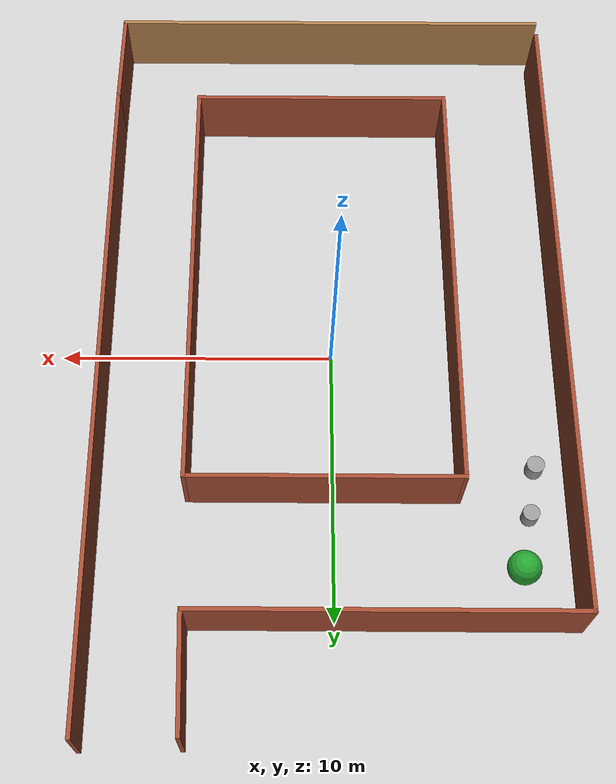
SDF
<?xml version="1.0"?>
<sdf version="1.4">
  <world name="default">
    <model name='ground_plane'>
      <static>1</static>
      <link name='link'>
        <collision name='collision'>
          <geometry>
            <plane>
              <normal>0 0 1</normal>
              <size>100 100</size>
            </plane>
          </geometry>
          <surface>
            <friction>
              <ode>
                <mu>100</mu>
                <mu2>50</mu2>
              </ode>
              <torsional>
                <ode/>
              </torsional>
            </friction>
            <contact>
              <ode/>
            </contact>
            <bounce/>
          </surface>
          <max_contacts>10</max_contacts>
        </collision>
        <visual name='visual'>
          <cast_shadows>0</cast_shadows>
          <geometry>
            <plane>
              <normal>0 0 1</normal>
              <size>100 100</size>
            </plane>
          </geometry>
          <material>
            <script>
              <uri>file://media/materials/scripts/gazebo.material</uri>
              <name>Gazebo/Tertiary</name>
            </script>
          </material>
        </visual>
        <self_collide>0</self_collide>
        <enable_wind>0</enable_wind>
        <kinematic>0</kinematic>
      </link>
    </model>
    <light name='sun' type='directional'>
      <cast_shadows>1</cast_shadows>
      <pose frame=''>0 0 10 0 -0 0</pose>
      <diffuse>0.8 0.8 0.8 1</diffuse>
      <specular>0.2 0.2 0.2 1</specular>
      <attenuation>
        <range>1000</range>
        <constant>0.9</constant>
        <linear>0.01</linear>
        <quadratic>0.001</quadratic>
      </attenuation>
      <direction>-0.5 0.1 -0.9</direction>
    </light>

    <!-- Other models -->

    <include>
      <uri>model://corridor_world</uri>
      <pose>0.0 0.10 0 0 0 0</pose>
    </include>

    <include>
      <uri>model://dynamic_obstacle</uri>
      <pose>-7.2 4.4 0.219 0 0 0</pose>
    </include>

    <include>
      <uri>model://dynamic_obstacle_1</uri>
      <pose>-6.91 6.19 0.219 0 0 0</pose>
    </include>

    <include>
      <uri>model://goal_location</uri>
      <pose>-6.5 8.2 0.7 0 0 0</pose>
    </include>

    <!-- User Camera -->
    <gui fullscreen='0'>
      <camera name='user_camera'>
        <pose frame=''>0.92 -7.97 22.96 0 0.675643 1.58</pose>
        <view_controller>orbit</view_controller>
        <projection_type>perspective</projection_type>
      </camera>
    </gui>
  </world>
</sdf>

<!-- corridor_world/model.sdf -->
<sdf version='1.6'>
  <model name='corridor'>
    <pose frame=''>-8.53208 -3.23332 0 0 -0 0</pose>
    <link name='Wall_12'>
      <collision name='Wall_12_Collision'>
        <geometry>
          <box>
            <size>13.5 0.15 2.5</size>
          </box>
        </geometry>
        <pose frame=''>0 0 1.25 0 -0 0</pose>
      </collision>
      <visual name='Wall_12_Visual'>
        <pose frame=''>0 0 1.25 0 -0 0</pose>
        <geometry>
          <box>
            <size>13.5 0.15 2.5</size>
          </box>
        </geometry>
        <material>
          <script>
            <uri>file://media/materials/scripts/gazebo.material</uri>
            <name>Gazebo/Bricks</name>
          </script>
          <ambient>1 1 1 1</ambient>
        </material>
        <meta>
          <layer>0</layer>
        </meta>
      </visual>
      <pose frame=''>-1.66567 10.0761 0 0 -0 0</pose>
    </link>
    <link name='Wall_13'>
      <collision name='Wall_13_Collision'>
        <geometry>
          <box>
            <size>4.14539 0.15 2.5</size>
          </box>
        </geometry>
        <pose frame=''>0 0 1.25 0 -0 0</pose>
      </collision>
      <visual name='Wall_13_Visual'>
        <pose frame=''>0 0 1.25 0 -0 0</pose>
        <geometry>
          <box>
            <size>4.14539 0.15 2.5</size>
          </box>
        </geometry>
        <material>
          <script>
            <uri>file://media/materials/scripts/gazebo.material</uri>
            <name>Gazebo/Bricks</name>
          </script>
          <ambient>1 1 1 1</ambient>
        </material>
        <meta>
          <layer>0</layer>
        </meta>
      </visual>
      <pose frame=''>5.00933 12.073 0 0 -0 1.59758</pose>
    </link>
    <link name='Wall_15'>
      <collision name='Wall_15_Collision'>
        <geometry>
          <box>
            <size>23.75 0.15 2.5</size>
          </box>
        </geometry>
        <pose frame=''>0 0 1.25 0 -0 0</pose>
      </collision>
      <visual name='Wall_15_Visual'>
        <pose frame=''>0 0 1.25 0 -0 0</pose>
        <geometry>
          <box>
            <size>23.75 0.15 2.5</size>
          </box>
        </geometry>
        <material>
          <script>
            <uri>file://media/materials/scripts/gazebo.material</uri>
            <name>Gazebo/Bricks</name>
          </script>
          <ambient>1 1 1 1</ambient>
        </material>
        <meta>
          <layer>0</layer>
        </meta>
      </visual>
      <pose frame=''>-8.34066 -1.72394 0 0 -0 -1.5708</pose>
    </link>
    <link name='Wall_17'>
      <collision name='Wall_17_Collision'>
        <geometry>
          <box>
            <size>16.75 0.15 2.5</size>
          </box>
        </geometry>
        <pose frame=''>0 0 1.25 0 -0 0</pose>
      </collision>
      <visual name='Wall_17_Visual'>
        <pose frame=''>0 0 1.25 0 -0 0</pose>
        <geometry>
          <box>
            <size>16.75 0.15 2.5</size>
          </box>
        </geometry>
        <material>
          <script>
            <uri>file://media/materials/scripts/gazebo.material</uri>
            <name>Gazebo/Wood</name>
          </script>
          <ambient>1 1 1 1</ambient>
        </material>
        <meta>
          <layer>0</layer>
        </meta>
      </visual>
      <pose frame=''>-0.021587 -14.1299 0 0 -0 0</pose>
    </link>
    <link name='Wall_18'>
      <collision name='Wall_18_Collision'>
        <geometry>
          <box>
            <size>3.81146 0.15 2.5</size>
          </box>
        </geometry>
        <pose frame=''>0 0 1.25 0 -0 0</pose>
      </collision>
      <visual name='Wall_18_Visual'>
        <pose frame=''>0 0 1.25 0 -0 0</pose>
        <geometry>
          <box>
            <size>3.81146 0.15 2.5</size>
          </box>
        </geometry>
        <material>
          <script>
            <uri>file://media/materials/scripts/gazebo.material</uri>
            <name>Gazebo/Bricks</name>
          </script>
          <ambient>1 1 1 1</ambient>
        </material>
        <meta>
          <layer>0</layer>
        </meta>
      </visual>
      <pose frame=''>8.30892 -12.2994 0 0 -0 1.55413</pose>
    </link>
    <link name='Wall_3'>
      <collision name='Wall_3_Collision'>
        <geometry>
          <box>
            <size>16 0.15 2.5</size>
          </box>
        </geometry>
        <pose frame=''>0 0 1.25 0 -0 0</pose>
      </collision>
      <visual name='Wall_3_Visual'>
        <pose frame=''>0 0 1.25 0 -0 0</pose>
        <geometry>
          <box>
            <size>16 0.15 2.5</size>
          </box>
        </geometry>
        <material>
          <script>
            <uri>file://media/materials/scripts/gazebo.material</uri>
            <name>Gazebo/Bricks</name>
          </script>
          <ambient>1 1 1 1</ambient>
        </material>
        <meta>
          <layer>0</layer>
        </meta>
      </visual>
      <pose frame=''>-4.44767 -2.4369 0 0 -0 1.5708</pose>
    </link>
    <link name='Wall_4'>
      <collision name='Wall_4_Collision'>
        <geometry>
          <box>
            <size>9.75 0.15 2.5</size>
          </box>
        </geometry>
        <pose frame=''>0 0 1.25 0 -0 0</pose>
      </collision>
      <visual name='Wall_4_Visual'>
        <pose frame=''>0 0 1.25 0 -0 0</pose>
        <geometry>
          <box>
            <size>9.75 0.15 2.5</size>
          </box>
        </geometry>
        <material>
          <script>
            <uri>file://media/materials/scripts/gazebo.material</uri>
            <name>Gazebo/Bricks</name>
          </script>
          <ambient>1 1 1 1</ambient>
        </material>
        <meta>
          <layer>0</layer>
        </meta>
      </visual>
      <pose frame=''>0.352329 5.4881 0 0 -0 0</pose>
    </link>
    <link name='Wall_5'>
      <collision name='Wall_5_Collision'>
        <geometry>
          <box>
            <size>16 0.15 2.5</size>
          </box>
        </geometry>
        <pose frame=''>0 0 1.25 0 -0 0</pose>
      </collision>
      <visual name='Wall_5_Visual'>
        <pose frame=''>0 0 1.25 0 -0 0</pose>
        <geometry>
          <box>
            <size>16 0.15 2.5</size>
          </box>
        </geometry>
        <material>
          <script>
            <uri>file://media/materials/scripts/gazebo.material</uri>
            <name>Gazebo/Bricks</name>
          </script>
          <ambient>1 1 1 1</ambient>
        </material>
        <meta>
          <layer>0</layer>
        </meta>
      </visual>
      <pose frame=''>5.15233 -2.4369 0 0 -0 -1.5708</pose>
    </link>
    <link name='Wall_6'>
      <collision name='Wall_6_Collision'>
        <geometry>
          <box>
            <size>9.75 0.15 2.5</size>
          </box>
        </geometry>
        <pose frame=''>0 0 1.25 0 -0 0</pose>
      </collision>
      <visual name='Wall_6_Visual'>
        <pose frame=''>0 0 1.25 0 -0 0</pose>
        <geometry>
          <box>
            <size>9.75 0.15 2.5</size>
          </box>
        </geometry>
        <material>
          <script>
            <uri>file://media/materials/scripts/gazebo.material</uri>
            <name>Gazebo/Bricks</name>
          </script>
          <ambient>1 1 1 1</ambient>
        </material>
        <meta>
          <layer>0</layer>
        </meta>
      </visual>
      <pose frame=''>0.352329 -10.3619 0 0 -0 3.14159</pose>
    </link>
    <link name='Wall_9'>
      <collision name='Wall_9_Collision'>
        <geometry>
          <box>
            <size>24.75 0.15 2.5</size>
          </box>
        </geometry>
        <pose frame=''>0 0 1.25 0 -0 0</pose>
      </collision>
      <visual name='Wall_9_Visual'>
        <pose frame=''>0 0 1.25 0 -0 0</pose>
        <geometry>
          <box>
            <size>24.75 0.15 2.5</size>
          </box>
        </geometry>
        <material>
          <script>
            <uri>file://media/materials/scripts/gazebo.material</uri>
            <name>Gazebo/Bricks</name>
          </script>
          <ambient>1 1 1 1</ambient>
        </material>
        <meta>
          <layer>0</layer>
        </meta>
      </visual>
      <pose frame=''>8.33943 1.8311 0 0 -0 1.5708</pose>
    </link>
    <static>1</static>
  </model>
</sdf>

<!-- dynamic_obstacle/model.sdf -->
<sdf version='1.6'>
  <model name='dynamic_obstacle_1'>
    <link name='base_link'>
      <inertial>
        <mass>0.104241</mass>
        <inertia>
          <ixx>0.0273737</ixx>
          <ixy>0</ixy>
          <ixz>0</ixz>
          <iyy>0.0273737</iyy>
          <iyz>0</iyz>
          <izz>0.0156413</izz>
        </inertia>
        <pose frame=''>0 0 0 0 -0 0</pose>
      </inertial>
      <pose frame=''>-0 3e-06 0 0 -0 0</pose>
      <visual name='visual'>
        <pose frame=''>0 0 0 0 -0 0</pose>
        <geometry>
          <cylinder>
            <radius>0.318908</radius>
            <length>0.85</length>
          </cylinder>
        </geometry>
        <material>
          <lighting>1</lighting>
          <script>
            <uri>file://media/materials/scripts/gazebo.material</uri>
            <name>Gazebo/Grey</name>
          </script>
        </material>
        <transparency>0</transparency>
        <cast_shadows>1</cast_shadows>
      </visual>
      <collision name='collision'>
        <laser_retro>0</laser_retro>
        <max_contacts>10</max_contacts>
        <pose frame=''>0 0 0 0 -0 0</pose>
        <geometry>
          <cylinder>
            <radius>0.318908</radius>
            <length>0.85</length>
          </cylinder>
        </geometry>
        <surface>
          <friction>
            <ode>
              <mu>1</mu>
              <mu2>1</mu2>
              <fdir1>0 0 0</fdir1>
              <slip1>0</slip1>
              <slip2>0</slip2>
            </ode>
            <torsional>
              <coefficient>1</coefficient>
              <patch_radius>0</patch_radius>
              <surface_radius>0</surface_radius>
              <use_patch_radius>1</use_patch_radius>
              <ode>
                <slip>0</slip>
              </ode>
            </torsional>
          </friction>
          <bounce>
            <restitution_coefficient>0</restitution_coefficient>
            <threshold>1e+06</threshold>
          </bounce>
          <contact>
            <collide_without_contact>0</collide_without_contact>
            <collide_without_contact_bitmask>1</collide_without_contact_bitmask>
            <collide_bitmask>1</collide_bitmask>
            <ode>
              <soft_cfm>0</soft_cfm>
              <soft_erp>0.2</soft_erp>
              <kp>1e+13</kp>
              <kd>1</kd>
              <max_vel>0.01</max_vel>
              <min_depth>0</min_depth>
            </ode>
            <bullet>
              <split_impulse>1</split_impulse>
              <split_impulse_penetration_threshold>-0.01</split_impulse_penetration_threshold>
              <soft_cfm>0</soft_cfm>
              <soft_erp>0.2</soft_erp>
              <kp>1e+13</kp>
              <kd>1</kd>
            </bullet>
          </contact>
        </surface>
      </collision>
    </link>
    <static>0</static>
    <allow_auto_disable>1</allow_auto_disable>

    <plugin name="object_controller" filename="libgazebo_ros_planar_move.so">
      <robotNamespace>dynamic_obstacle_1</robotNamespace>
      <commandTopic>cmd_vel</commandTopic>
      <odometryTopic>odom</odometryTopic>
      <odometryFrame>odom</odometryFrame>
      <odometryRate>20.0</odometryRate>
      <robotBaseFrame>base_link</robotBaseFrame>
    </plugin>

  </model>
</sdf>

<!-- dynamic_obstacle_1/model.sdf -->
<sdf version='1.6'>
  <model name='dynamic_obstacle_1'>
        <link name='link_2'>
      <inertial>
        <mass>0.104241</mass>
        <inertia>
          <ixx>0.0273737</ixx>
          <ixy>0</ixy>
          <ixz>0</ixz>
          <iyy>0.0273737</iyy>
          <iyz>0</iyz>
          <izz>0.0156413</izz>
        </inertia>
       <pose frame=''>0 0 -0.3 0 -0 0</pose>
      </inertial>
      <pose frame=''>-0 3e-06 0 0 -0 0</pose>

      <visual name='visual'>
        <pose frame=''>0 0 0 0 -0 0</pose>
        <geometry>
          <cylinder>
            <radius>0.3</radius>
            <length>0.8</length>
          </cylinder>
        </geometry>
        <material>
          <lighting>1</lighting>
          <script>
            <uri>file://media/materials/scripts/gazebo.material</uri>
            <name>Gazebo/Grey</name>
          </script>
        </material>
        <transparency>0</transparency>
        <cast_shadows>1</cast_shadows>
      </visual>

      <collision name='collision'>
        <laser_retro>0</laser_retro>
        <max_contacts>10</max_contacts>
        <pose frame=''>0 0 0 0 -0 0</pose>
        <geometry>
          <cylinder>
            <radius>0.3</radius>
            <length>0.8</length>
          </cylinder>
        </geometry>
        <surface>
          <friction>
            <ode>
              <mu>1</mu>
              <mu2>1</mu2>
              <fdir1>0 0 0</fdir1>
              <slip1>0</slip1>
              <slip2>0</slip2>
            </ode>
            <torsional>
              <coefficient>1</coefficient>
              <patch_radius>0</patch_radius>
              <surface_radius>0</surface_radius>
              <use_patch_radius>1</use_patch_radius>
              <ode>
                <slip>0</slip>
              </ode>
            </torsional>
          </friction>
          <bounce>
            <restitution_coefficient>0</restitution_coefficient>
            <threshold>1e+06</threshold>
          </bounce>
          <contact>
            <collide_without_contact>0</collide_without_contact>
            <collide_without_contact_bitmask>1</collide_without_contact_bitmask>
            <collide_bitmask>1</collide_bitmask>
            <ode>
              <soft_cfm>0</soft_cfm>
              <soft_erp>0.2</soft_erp>
              <kp>1e+13</kp>
              <kd>1</kd>
              <max_vel>0.01</max_vel>
              <min_depth>0</min_depth>
            </ode>
            <bullet>
              <split_impulse>1</split_impulse>
              <split_impulse_penetration_threshold>-0.01</split_impulse_penetration_threshold>
              <soft_cfm>0</soft_cfm>
              <soft_erp>0.2</soft_erp>
              <kp>1e+13</kp>
              <kd>1</kd>
            </bullet>
          </contact>
        </surface>
      </collision>
    </link>
    <static>0</static>
    <allow_auto_disable>1</allow_auto_disable>

    <plugin name="object_controller" filename="libgazebo_ros_planar_move.so">
      <robotNamespace>dynamic_obstacle_1</robotNamespace>
      <commandTopic>cmd_vel</commandTopic>
      <odometryTopic>odom</odometryTopic>
      <odometryFrame>odom</odometryFrame>
      <odometryRate>20.0</odometryRate>
      <robotBaseFrame>link_2</robotBaseFrame>
    </plugin>

  </model>
</sdf>

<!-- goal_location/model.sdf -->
<sdf version='1.6'>
  <model name='goal_location'>

    <link name='link_0'>
        <inertial>
          <mass>0.0001</mass>
          <inertia>
            <ixx>1e-05</ixx>
            <ixy>0</ixy>
            <ixz>0</ixz>
            <iyy>1e-05</iyy>
            <iyz>0</iyz>
            <izz>0</izz>
          </inertia>
        <pose frame=''>0 0 0 0 -0 0</pose>
      </inertial>
      <pose frame=''>2.4e-05 -1.2e-05 0 0 -0 0</pose>
      <gravity>0</gravity>
      <self_collide>0</self_collide>
      <kinematic>0</kinematic>
      <enable_wind>0</enable_wind>

      <visual name='visual'>
        <pose frame=''>0 0 0 0 -0 0</pose>
        <geometry>
          <sphere>
            <radius>0.6</radius>
          </sphere>
        </geometry>
        <material>
          <lighting>1</lighting>
          <script>
            <uri>file://media/materials/scripts/gazebo.material</uri>
            <name>Gazebo/Green</name>
          </script>
          <shader type='vertex'>
            <normal_map>__default__</normal_map>
          </shader>
          <ambient>1 0 0 1</ambient>
          <diffuse>0.2 1 0.2 1</diffuse>
          <specular>0.1 0.1 0.1 1</specular>
          <emissive>0 0 0 1</emissive>
        </material>
        <transparency>0</transparency>
        <cast_shadows>1</cast_shadows>
      </visual>

    </link>

    <static>1</static>
    <allow_auto_disable>1</allow_auto_disable>

  </model>
</sdf>
